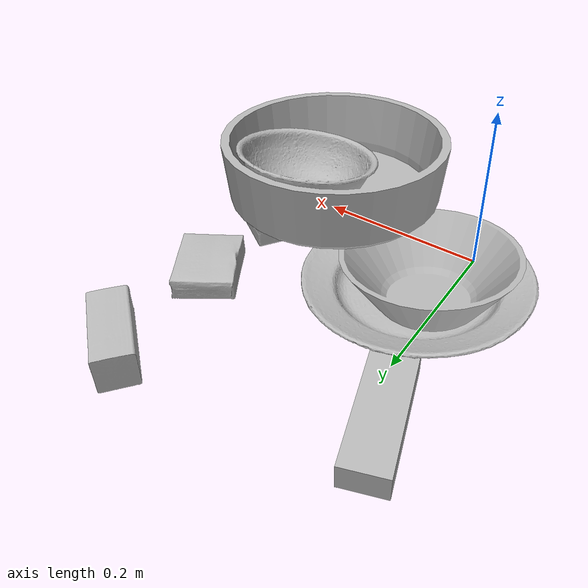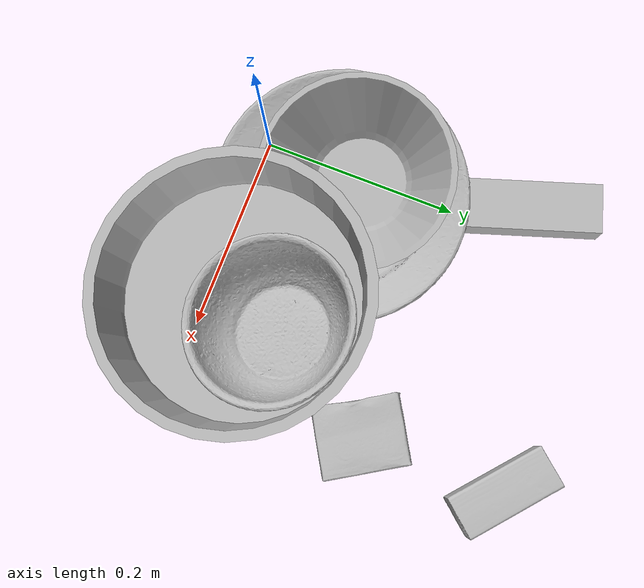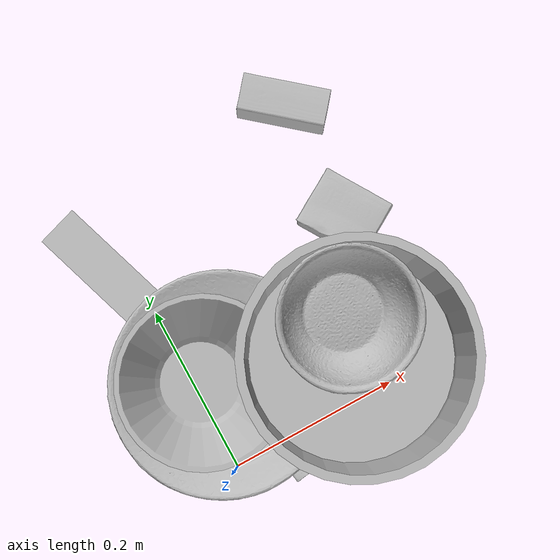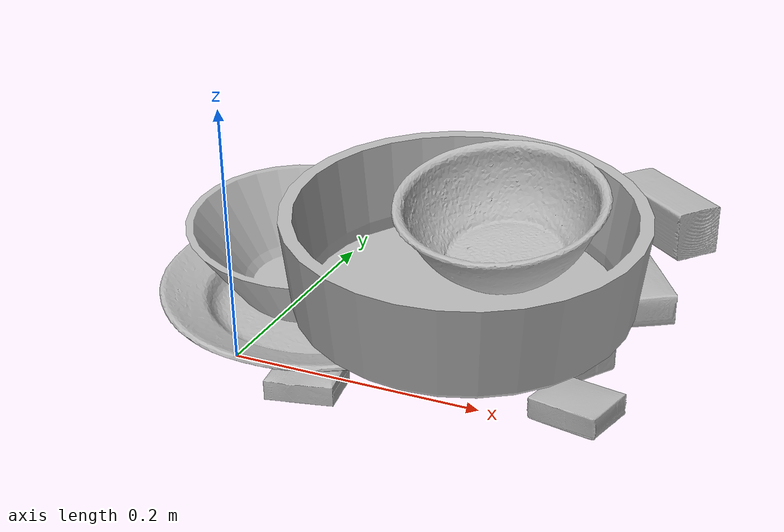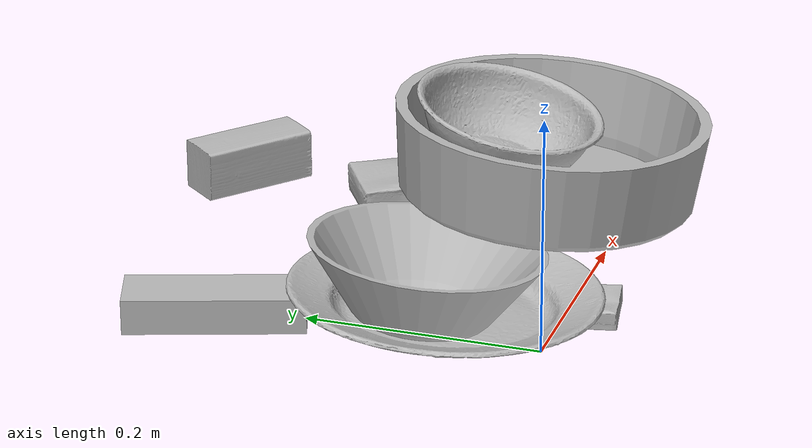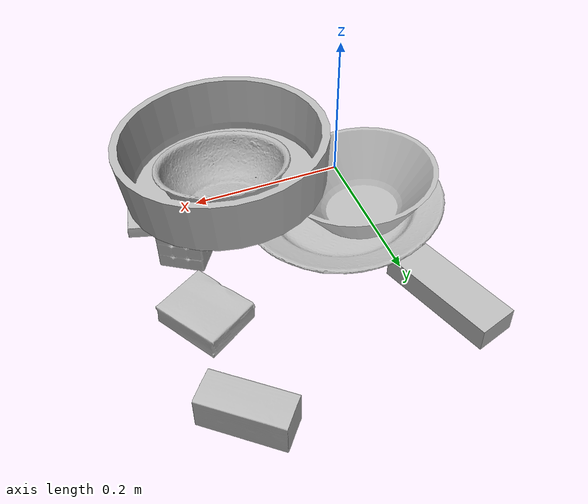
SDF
<sdf version="1.4">
  <world name="default">
    <light name="light1" type="point">
      <pose>0 0 1 0 0 0</pose>
      <diffuse>3 3 3 1</diffuse>
      <specular>3 3 3 1</specular>
    </light>
    <light name="light2" type="point">
      <pose>0 0.5 2 0 0 0</pose>
      <diffuse>1 1 1 1</diffuse>
      <specular>1 1 1 1</specular>
    </light>
    <light name="light3" type="point">
      <pose>0 0.5 2 0 0 0</pose>
      <diffuse>3 3 3 1</diffuse>
      <specular>3 3 3 1</specular>
    </light>
    <scene>
      <ambient>0.7 0.7 0.7</ambient>
    </scene>
    <model name="box1">
      <link name="link_box1">
        <collision name="default">
          <geometry>
            <mesh>
              <uri>model://rubiks_cube/collision_meshes/collision.obj</uri>
              <scale>1.0 1.0 1.0</scale>
            </mesh>
          </geometry>
          <surface>
            <friction>
              <ode>
                <mu>0.5</mu>
                <mu2>0.5</mu2>
              </ode>
            </friction>
          <contact>
        <ode>
            <max_vel>0</max_vel>
            <min_depth>0.0001</min_depth>
            <kp>1e8</kp>
        </ode>
    </contact></surface>
        </collision>
        <visual name="default">
          <geometry>
            <mesh>
              <uri>model://rubiks_cube/visual_meshes/visual.dae</uri>
              <scale>1.0 1.0 1.0</scale>
            </mesh>
          </geometry>
        </visual>
        <inertial>
          <mass>0.14937607944011688</mass>
          <pose>2.6721041649580002e-05 5.256967051536776e-05 -7.264316082000732e-06 -0.054671979216720346 -0.0981390543553378 -0.03445400726577695</pose>
          <inertia>
            <ixx>8.254031e-05</ixx>
            <iyy>8.2155384e-05</iyy>
            <izz>8.32243e-05</izz>
            <ixy>0</ixy>
            <ixz>0</ixz>
            <iyz>0</iyz>
          </inertia>
        </inertial>
      </link>
      <pose>0.23561060428619385 0.08432596921920776 0.030181286856532097 -0.05639271414884613 -1.714530805993775e-05 -2.1399776707233724</pose>
    </model>
    <model name="box11">
      <link name="link_box11">
        <collision name="default">
          <geometry>
            <mesh>
              <uri>model://gelatin_box/collision_meshes/collision.obj</uri>
              <scale>1.0 1.0 1.0</scale>
            </mesh>
          </geometry>
          <surface>
            <friction>
              <ode>
                <mu>0.5</mu>
                <mu2>0.5</mu2>
              </ode>
            </friction>
          <contact>
        <ode>
            <max_vel>0</max_vel>
            <min_depth>0.0001</min_depth>
            <kp>1e8</kp>
        </ode>
    </contact></surface>
        </collision>
        <visual name="default">
          <geometry>
            <mesh>
              <uri>model://gelatin_box/visual_meshes/visual.dae</uri>
              <scale>1.0 1.0 1.0</scale>
            </mesh>
          </geometry>
        </visual>
        <inertial>
          <mass>0.1927502304315567</mass>
          <pose>0.0004319618456065655 0.00011156871914863586 -0.00036403213744051754 -0.0010503718519204429 -0.00475581822657324 0.016440557608202722</pose>
          <inertia>
            <ixx>0.00013606594</ixx>
            <iyy>9.7191194e-05</iyy>
            <izz>0.00020712269</izz>
            <ixy>0</ixy>
            <ixz>0</ixz>
            <iyz>0</iyz>
          </inertia>
        </inertial>
      </link>
      <pose>0.24640308320522308 0.19561754167079926 0.01516831573098898 0.005597444433800707 -0.007304533612550248 -2.6088098156024264</pose>
    </model>
    <model name="box2">
      <link name="link_box2">
        <collision name="default">
          <geometry>
            <mesh>
              <uri>model://jenga/collision_meshes/collision.obj</uri>
              <scale>1.0 1.0 1.0</scale>
            </mesh>
          </geometry>
          <surface>
            <friction>
              <ode>
                <mu>0.5</mu>
                <mu2>0.5</mu2>
              </ode>
            </friction>
          <contact>
        <ode>
            <max_vel>0</max_vel>
            <min_depth>0.0001</min_depth>
            <kp>1e8</kp>
        </ode>
    </contact></surface>
        </collision>
        <visual name="default">
          <geometry>
            <mesh>
              <uri>model://jenga/visual_meshes/visual.dae</uri>
              <scale>1.0 1.0 1.0</scale>
            </mesh>
          </geometry>
        </visual>
        <inertial>
          <mass>0.17753760516643524</mass>
          <pose>-2.5028555228345795e-07 -0.00010250010382151231 -4.0923401684267446e-05 0.0 -7.342155186052628e-07 0.0</pose>
          <inertia>
            <ixx>4.912897e-05</ixx>
            <iyy>0.00033289654</iyy>
            <izz>0.00035539534</izz>
            <ixy>0</ixy>
            <ixz>0</ixz>
            <iyz>0</iyz>
          </inertia>
        </inertial>
      </link>
      <pose>-0.027135584503412247 0.26818734407424927 0.0150012681260705 -2.3907708758732216e-05 3.400696897503525e-05 1.890304266106803</pose>
    </model>
    <model name="box21">
      <link name="link_box21">
        <collision name="default">
          <geometry>
            <mesh>
              <uri>model://cracker_box/collision_meshes/collision.obj</uri>
              <scale>0.25 0.25 0.25</scale>
            </mesh>
          </geometry>
          <surface>
            <friction>
              <ode>
                <mu>0.5</mu>
                <mu2>0.5</mu2>
              </ode>
            </friction>
          <contact>
        <ode>
            <max_vel>0</max_vel>
            <min_depth>0.0001</min_depth>
            <kp>1e8</kp>
        </ode>
    </contact></surface>
        </collision>
        <visual name="default">
          <geometry>
            <mesh>
              <uri>model://cracker_box/visual_meshes/visual.dae</uri>
              <scale>0.25 0.25 0.25</scale>
            </mesh>
          </geometry>
        </visual>
        <inertial>
          <mass>0.032025858759880066</mass>
          <pose>0.00023660347505938262 6.358561950037256e-05 -0.0004257383698131889 -0.0003162079452709603 -0.01110648960005095 0.0025467945380896087</pose>
          <inertia>
            <ixx>5.091218e-06</ixx>
            <iyy>8.406602e-06</iyy>
            <izz>1.1996991e-05</izz>
            <ixy>0</ixy>
            <ixz>0</ixz>
            <iyz>0</iyz>
          </inertia>
        </inertial>
      </link>
      <pose>0.07469168305397034 -0.02449379861354828 0.009508073329925537 -0.035374320258100445 -0.011093658042592913 0.16284698667220981</pose>
    </model>
    <model name="box3">
      <link name="link_box3">
        <collision name="default">
          <geometry>
            <mesh>
              <uri>model://wood_block/collision_meshes/collision.obj</uri>
              <scale>0.5 0.5 0.5</scale>
            </mesh>
          </geometry>
          <surface>
            <friction>
              <ode>
                <mu>0.5</mu>
                <mu2>0.5</mu2>
              </ode>
            </friction>
          <contact>
        <ode>
            <max_vel>0</max_vel>
            <min_depth>0.0001</min_depth>
            <kp>1e8</kp>
        </ode>
    </contact></surface>
        </collision>
        <visual name="default">
          <geometry>
            <mesh>
              <uri>model://wood_block/visual_meshes/visual.dae</uri>
              <scale>0.5 0.5 0.5</scale>
            </mesh>
          </geometry>
        </visual>
        <inertial>
          <mass>0.12936852872371674</mass>
          <pose>-2.9066577553749084e-06 -0.00028540470520965755 0.00013204290007706732 -0.052209755292171825 -0.0051926950820086835 -0.006861377939779924</pose>
          <inertia>
            <ixx>4.327867e-05</ixx>
            <iyy>0.00013671734</iyy>
            <izz>0.00013620593</izz>
            <ixy>0</ixy>
            <ixz>0</ixz>
            <iyz>0</iyz>
          </inertia>
        </inertial>
      </link>
      <pose>0.24672992527484894 0.34148287773132324 0.02262926660478115 -0.005208432634736125 0.005718768263818874 -0.6963558463833998</pose>
    </model>
    <model name="box31">
      <link name="link_box31">
        <collision name="default">
          <geometry>
            <mesh>
              <uri>model://pudding_box/collision_meshes/collision.obj</uri>
              <scale>0.5 0.5 0.5</scale>
            </mesh>
          </geometry>
          <surface>
            <friction>
              <ode>
                <mu>0.5</mu>
                <mu2>0.5</mu2>
              </ode>
            </friction>
          <contact>
        <ode>
            <max_vel>0</max_vel>
            <min_depth>0.0001</min_depth>
            <kp>1e8</kp>
        </ode>
    </contact></surface>
        </collision>
        <visual name="default">
          <geometry>
            <mesh>
              <uri>model://pudding_box/visual_meshes/visual.dae</uri>
              <scale>0.5 0.5 0.5</scale>
            </mesh>
          </geometry>
        </visual>
        <inertial>
          <mass>0.02777985855937004</mass>
          <pose>0.00024474109522998333 0.00040339428232982755 -0.0002594413817860186 0.005213100847255284 -0.006603800106148706 0.020079825159203687</pose>
          <inertia>
            <ixx>7.850925e-06</ixx>
            <iyy>5.282159e-06</iyy>
            <izz>1.1593943e-05</izz>
            <ixy>0</ixy>
            <ixz>0</ixz>
            <iyz>0</iyz>
          </inertia>
        </inertial>
      </link>
      <pose>0.26698020100593567 0.018224552273750305 0.009862903505563736 0.022348434108395616 -0.011391779825553401 -1.8116315511766738</pose>
    </model>
    <model name="plate1">
      <link name="link_plate1">
        <collision name="default">
          <geometry>
            <mesh>
              <uri>model://plate/collision_meshes/collision.obj</uri>
              <scale>1.0 1.0 1.0</scale>
            </mesh>
          </geometry>
          <surface>
            <friction>
              <ode>
                <mu>0.5</mu>
                <mu2>0.5</mu2>
              </ode>
            </friction>
          <contact>
        <ode>
            <max_vel>0</max_vel>
            <min_depth>0.0001</min_depth>
            <kp>1e8</kp>
        </ode>
    </contact></surface>
        </collision>
        <visual name="default">
          <geometry>
            <mesh>
              <uri>model://plate/visual_meshes/visual.dae</uri>
              <scale>1.0 1.0 1.0</scale>
            </mesh>
          </geometry>
        </visual>
        <inertial>
          <mass>0.18243028223514557</mass>
          <pose>-0.0006044635083526373 0.00027825916185975075 -0.0010561967501416802 0.002218802985991306 -0.003225472580220492 0.4526054178664253</pose>
          <inertia>
            <ixx>0.00085341244</ixx>
            <iyy>0.00084524986</iyy>
            <izz>0.0016691468</izz>
            <ixy>0</ixy>
            <ixz>0</ixz>
            <iyz>0</iyz>
          </inertia>
        </inertial>
      </link>
      <pose>0.02954987622797489 0.09000062942504883 0.018267609179019928 0.0052344745515756136 0.06497158929437734 -0.44190674979358424</pose>
    </model>
    <model name="bowl1">
      <link name="link_bowl1">
        <collision name="default">
          <geometry>
            <mesh>
              <uri>model://bowl_a/collision_meshes/collision.obj</uri>
              <scale>1.0 1.0 1.0</scale>
            </mesh>
          </geometry>
          <surface>
            <friction>
              <ode>
                <mu>0.5</mu>
                <mu2>0.5</mu2>
              </ode>
            </friction>
          <contact>
        <ode>
            <max_vel>0</max_vel>
            <min_depth>0.0001</min_depth>
            <kp>1e8</kp>
        </ode>
    </contact></surface>
        </collision>
        <visual name="default">
          <geometry>
            <mesh>
              <uri>model://bowl_a/visual_meshes/visual.dae</uri>
              <scale>1.0 1.0 1.0</scale>
            </mesh>
          </geometry>
        </visual>
        <inertial>
          <mass>0.33530884981155396</mass>
          <pose>0.00027867525932379067 4.7312179958680645e-05 -0.0013765293406322598 -0.0009805353119733814 -0.0010938238033148682 -0.19123781325276382</pose>
          <inertia>
            <ixx>0.0009546399</ixx>
            <iyy>0.0009605007</iyy>
            <izz>0.0016978635</izz>
            <ixy>0</ixy>
            <ixz>0</ixz>
            <iyz>0</iyz>
          </inertia>
        </inertial>
      </link>
      <pose>0.010830869898200035 0.1017441600561142 0.04366154968738556 0.11159398128344969 0.043349548750053014 0.47381618137343845</pose>
    </model>
    <model name="plate2">
      <link name="link_plate2">
        <collision name="default">
          <geometry>
            <mesh>
              <uri>model://pan_tefal/collision_meshes/collision.obj</uri>
              <scale>1.0 1.0 1.0</scale>
            </mesh>
          </geometry>
          <surface>
            <friction>
              <ode>
                <mu>0.5</mu>
                <mu2>0.5</mu2>
              </ode>
            </friction>
          <contact>
        <ode>
            <max_vel>0</max_vel>
            <min_depth>0.0001</min_depth>
            <kp>1e8</kp>
        </ode>
    </contact></surface>
        </collision>
        <visual name="default">
          <geometry>
            <mesh>
              <uri>model://pan_tefal/visual_meshes/visual.dae</uri>
              <scale>1.0 1.0 1.0</scale>
            </mesh>
          </geometry>
        </visual>
        <inertial>
          <mass>1.3054066896438599</mass>
          <pose>-0.00018001779972109944 3.2791245757834986e-05 -0.008514936082065105 0.0008190347553724757 -0.0003301394488099971 -0.33186691456643896</pose>
          <inertia>
            <ixx>0.00901116</ixx>
            <iyy>0.009069256</iyy>
            <izz>0.016587809</izz>
            <ixy>0</ixy>
            <ixz>0</ixz>
            <iyz>0</iyz>
          </inertia>
        </inertial>
      </link>
      <pose>0.17126166820526123 0.042946215718984604 0.09801933914422989 0.009243673465035145 0.07792436674574248 -0.9025014728209215</pose>
    </model>
    <model name="bowl2">
      <link name="link_bowl2">
        <collision name="default">
          <geometry>
            <mesh>
              <uri>model://bowl/collision_meshes/collision.obj</uri>
              <scale>1.0 1.0 1.0</scale>
            </mesh>
          </geometry>
          <surface>
            <friction>
              <ode>
                <mu>0.5</mu>
                <mu2>0.5</mu2>
              </ode>
            </friction>
          <contact>
        <ode>
            <max_vel>0</max_vel>
            <min_depth>0.0001</min_depth>
            <kp>1e8</kp>
        </ode>
    </contact></surface>
        </collision>
        <visual name="default">
          <geometry>
            <mesh>
              <uri>model://bowl/visual_meshes/visual.dae</uri>
              <scale>1.0 1.0 1.0</scale>
            </mesh>
          </geometry>
        </visual>
        <inertial>
          <mass>0.1096961572766304</mass>
          <pose>0.00020445209520403296 -0.0010302049340680242 -0.0008042648551054299 -0.015764066902751193 0.014546817497496476 0.7140421604823016</pose>
          <inertia>
            <ixx>0.00025198064</ixx>
            <iyy>0.00024635042</iyy>
            <izz>0.0004239182</izz>
            <ixy>0</ixy>
            <ixz>0</ixz>
            <iyz>0</iyz>
          </inertia>
        </inertial>
      </link>
      <pose>0.1840773969888687 0.0864315778017044 0.10441505908966064 0.18090265908161698 0.12817767770844796 -0.6332445470715077</pose>
    </model>
  <physics type="ode">
      <max_contacts>50</max_contacts>
      <ode>
        <solver>
          <type>quick</type>
          <iters>75</iters>
        </solver>
        <constraints>
          <contact_max_correcting_vel>0</contact_max_correcting_vel>
          <contact_surface_layer>0</contact_surface_layer>
        </constraints>
      </ode>
    </physics></world>
</sdf>
